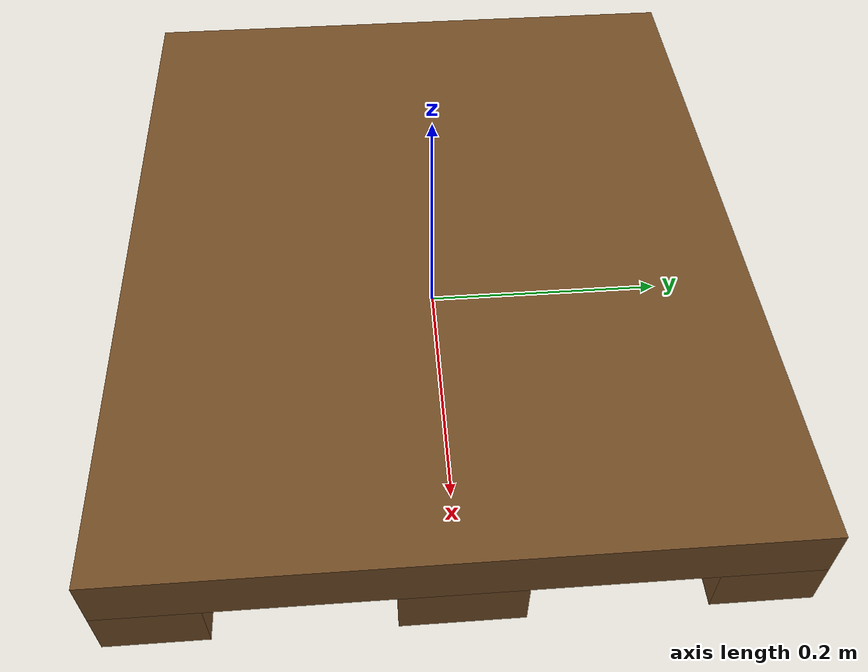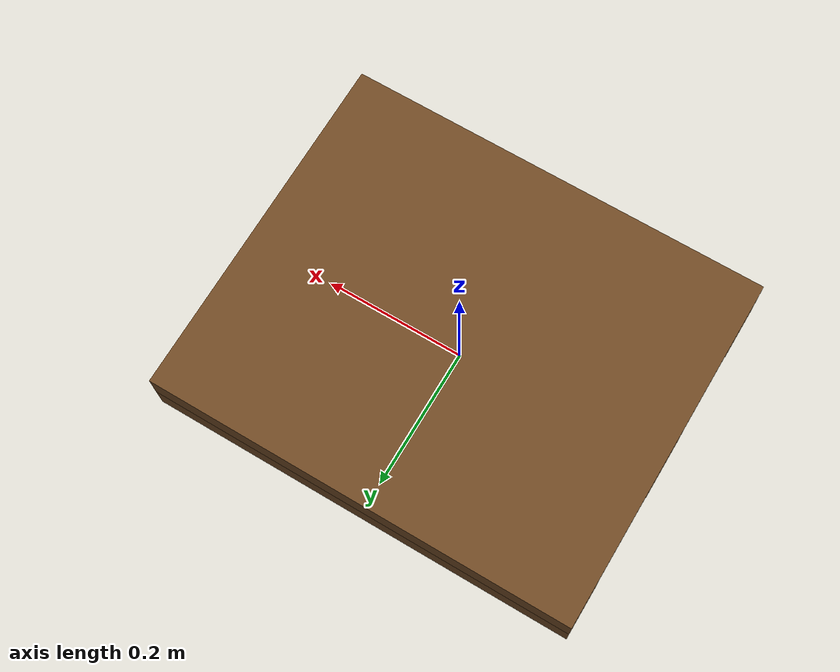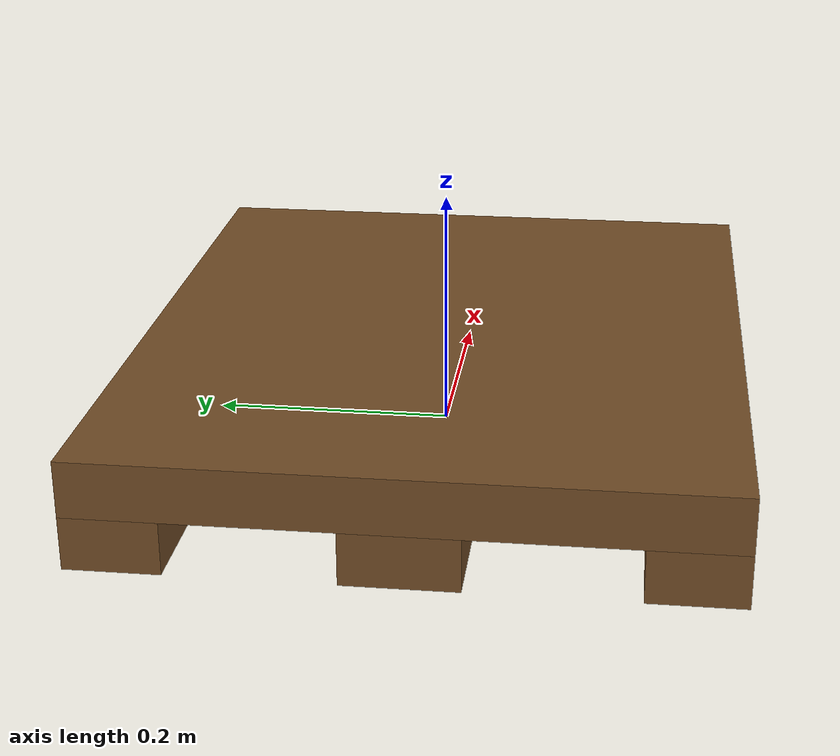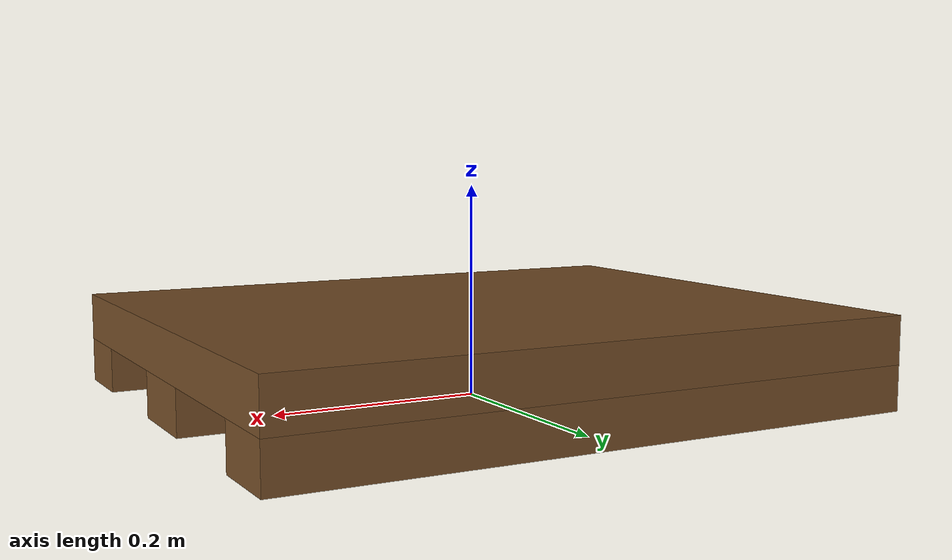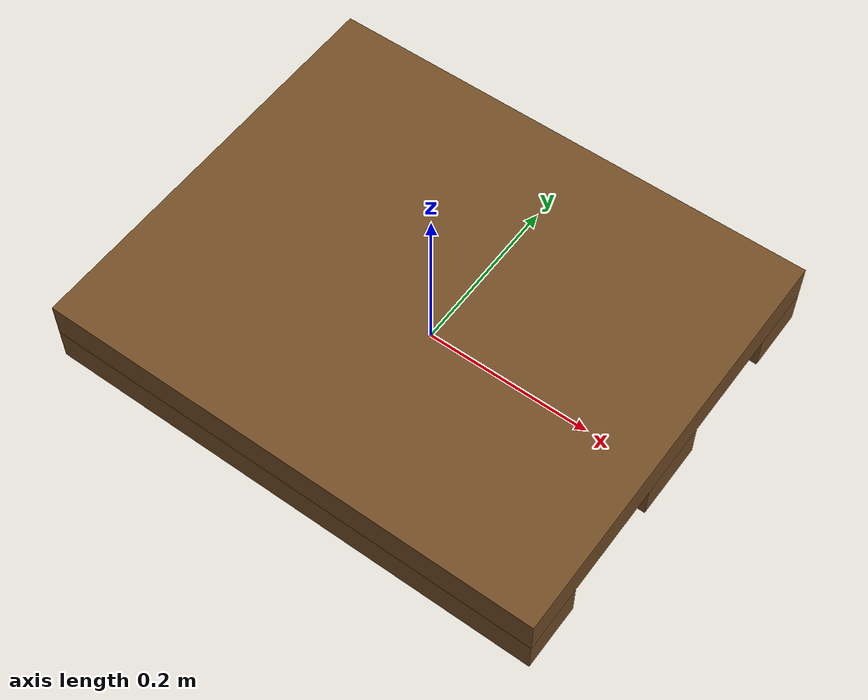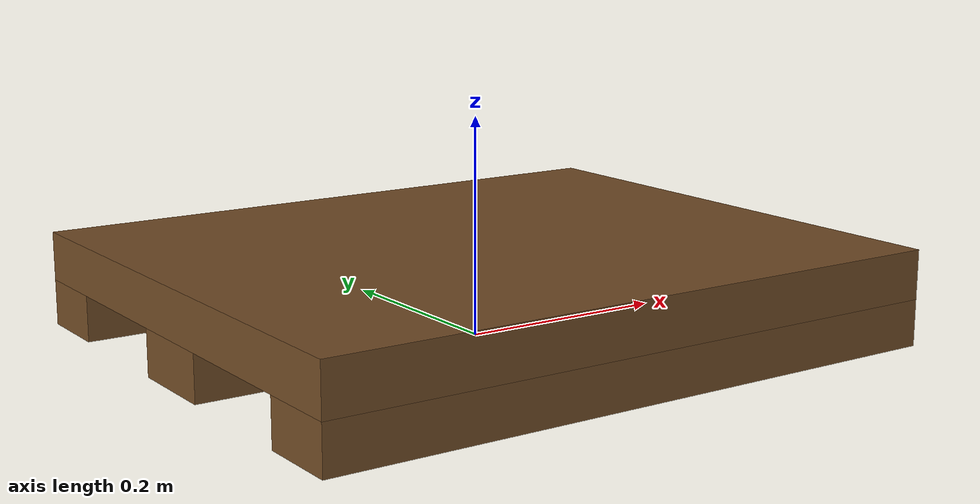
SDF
<?xml version="1.0" ?>
<sdf version="1.6">
  <model name="pallet">
    <static>false</static>
    <pose>0 0 0 0 0 0</pose>

    <link name="pallet_base">
      <pose>0 0 0.065 0 0 0</pose>

      <inertial>
        <mass>2.0</mass>
        <inertia>
          <ixx>0.02</ixx><ixy>0</ixy><ixz>0</ixz>
          <iyy>0.02</iyy><iyz>0</iyz><izz>0.04</izz>
        </inertia>
      </inertial>

      <collision name="base_collision">
        <geometry>
          <box><size>0.6 0.5 0.045</size></box>
        </geometry>
        <surface>
          <friction>
            <ode><mu>0.8</mu><mu2>0.6</mu2></ode>
          </friction>
        </surface>
      </collision>

      <visual name="base_visual">
        <geometry>
          <box><size>0.6 0.5 0.045</size></box>
        </geometry>
        <material>
          <ambient>0.45 0.3 0.15 1</ambient>
          <diffuse>0.45 0.3 0.15 1</diffuse>
          <specular>0.1 0.1 0.1 1</specular>
        </material>
      </visual>
    </link>

    <link name="left_leg">
      <pose>0.0 0.2125 0.02125 0 0 0</pose>
      <inertial>
        <mass>0.5</mass>
        <inertia>
          <ixx>0.001</ixx><ixy>0</ixy><ixz>0</ixz>
          <iyy>0.001</iyy><iyz>0</iyz><izz>0.001</izz>
        </inertia>
      </inertial>
      <collision name="left_leg_collision">
        <geometry>
          <box><size>0.6 0.075 0.0425</size></box>
        </geometry>
      </collision>
      <visual name="left_leg_visual">
        <geometry>
          <box><size>0.6 0.075 0.0425</size></box>
        </geometry>
        <material>
          <ambient>0.45 0.3 0.15 1</ambient>
          <diffuse>0.45 0.3 0.15 1</diffuse>
          <specular>0.1 0.1 0.1 1</specular>
        </material>
      </visual>
    </link>

    <link name="center_leg">
      <pose>0.0 -0.2125 0.02125 0 0 0</pose>
      <inertial>
        <mass>0.5</mass>
        <inertia>
          <ixx>0.001</ixx><ixy>0</ixy><ixz>0</ixz>
          <iyy>0.001</iyy><iyz>0</iyz><izz>0.001</izz>
        </inertia>
      </inertial>
      <collision name="center_leg_collision">
        <geometry>
          <box><size>0.6 0.075 0.0425</size></box>
        </geometry>
      </collision>
      <visual name="center_leg_visual">
        <geometry>
          <box><size>0.6 0.075 0.0425</size></box>
        </geometry>
        <material>
          <ambient>0.45 0.3 0.15 1</ambient>
          <diffuse>0.45 0.3 0.15 1</diffuse>
          <specular>0.1 0.1 0.1 1</specular>
        </material>
      </visual>
    </link>

    <link name="right_leg">
      <pose>0 0 0.02125 0 0 0</pose>
      <inertial>
        <mass>0.5</mass>
        <inertia>
          <ixx>0.001</ixx><ixy>0</ixy><ixz>0</ixz>
          <iyy>0.001</iyy><iyz>0</iyz><izz>0.001</izz>
        </inertia>
      </inertial>
      <collision name="right_leg_collision">
        <geometry>
          <box><size>0.6 0.09 0.0425</size></box>
        </geometry>
      </collision>
      <visual name="right_leg_visual">
        <geometry>
          <box><size>0.6 0.09 0.0425</size></box>
        </geometry>
        <material>
          <ambient>0.45 0.3 0.15 1</ambient>
          <diffuse>0.45 0.3 0.15 1</diffuse>
          <specular>0.1 0.1 0.1 1</specular>
        </material>
      </visual>
    </link>

    <joint name="left_leg_joint" type="fixed">
      <parent>pallet_base</parent>
      <child>left_leg</child>
    </joint>
    <joint name="center_leg_joint" type="fixed">
      <parent>pallet_base</parent>
      <child>center_leg</child>
    </joint>
    <joint name="right_leg_joint" type="fixed">
      <parent>pallet_base</parent>
      <child>right_leg</child>
    </joint>
  </model>
</sdf>
